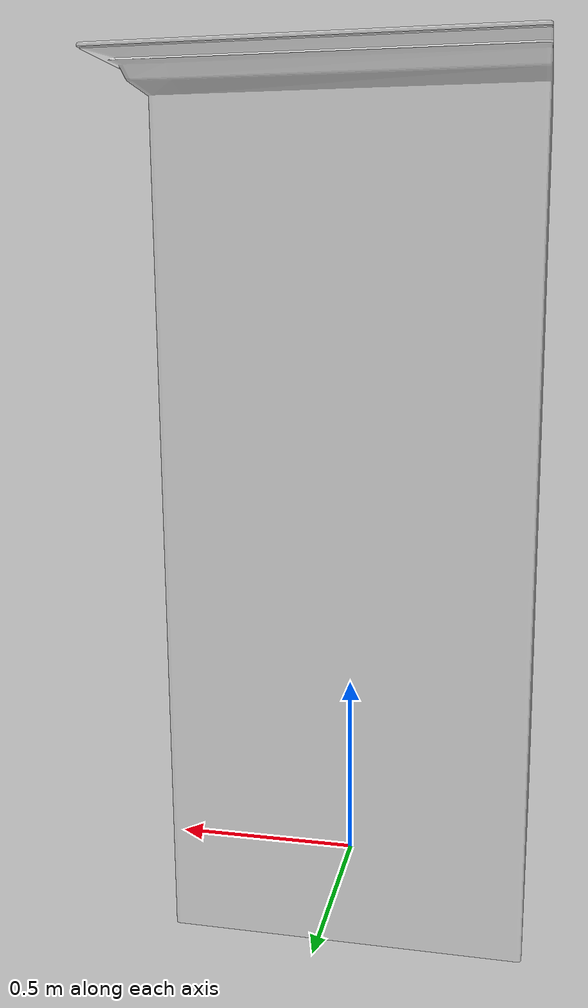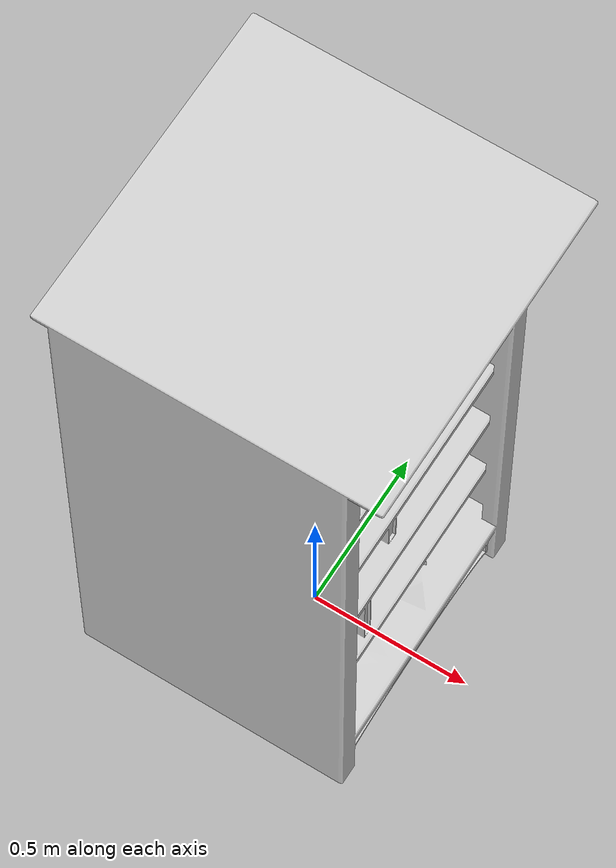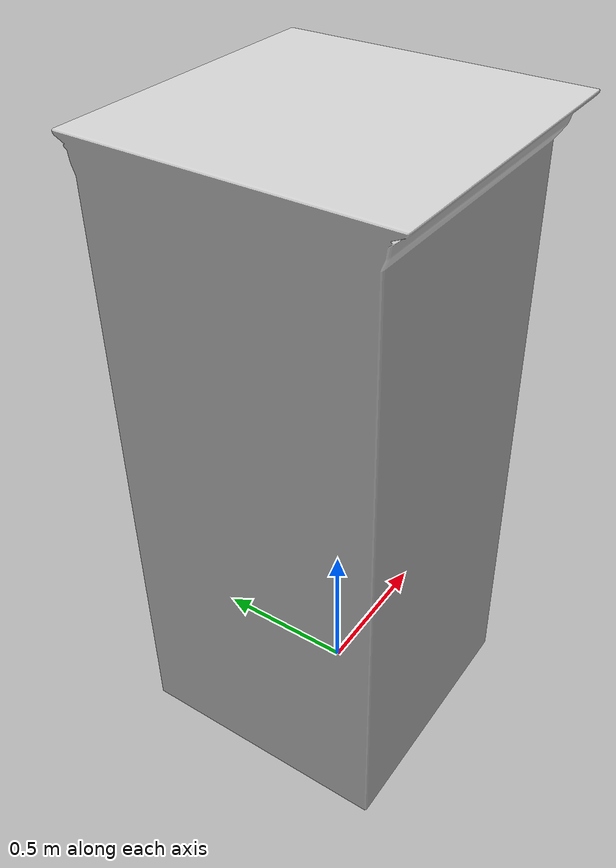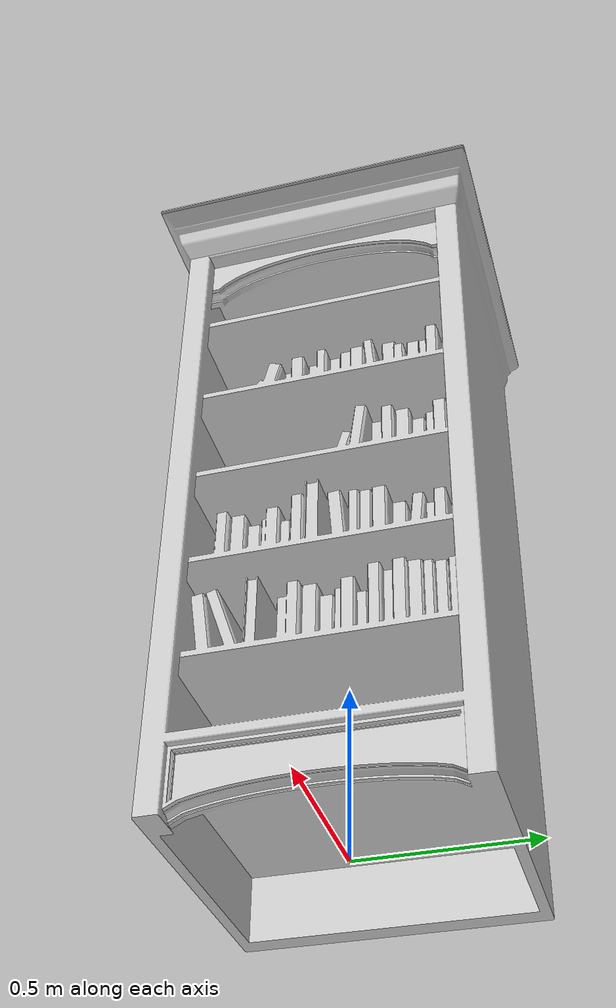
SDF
<sdf version="1.6">
	<model name="shelf1">
		<static>true</static>
		<link name="bed_axis">
			<pose>0 0 0 0 0 0</pose>
			<collision name="collision">
				<geometry>
					<mesh>
						<uri>meshes/shelf1.dae</uri>
					</mesh>
				</geometry>
			</collision>
			<visual name="visual">
				<geometry>
					<mesh>
						<uri>meshes/shelf1.dae</uri>
					</mesh>
				</geometry>
			</visual>
		</link>
	</model>
</sdf>
